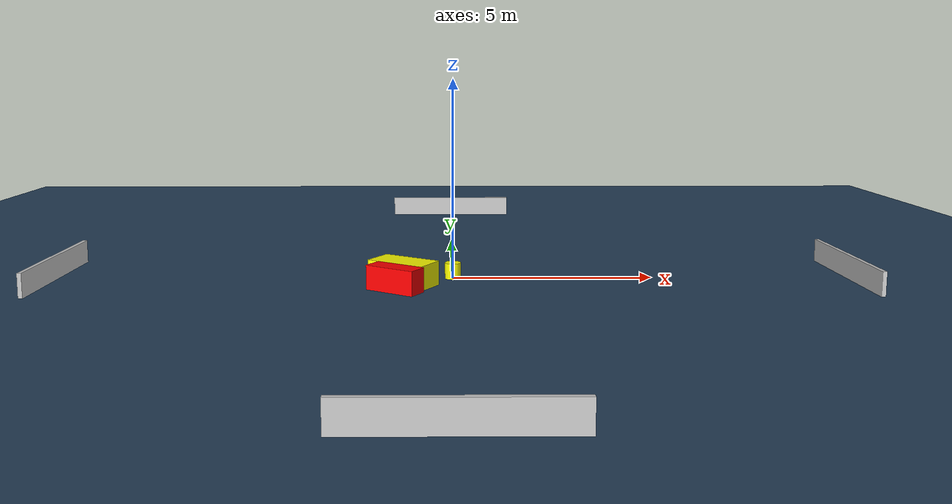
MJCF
<?xml version="1.0" ?>
<mujoco model="generated_environment">
  <option timestep="0.01" integrator="RK4" cone="elliptic"/>
  <default>
    <geom density="1"/>
  </default>
  <asset>
    <texture builtin="gradient" height="3072" name="skybox" rgb1="0.3 0.5 0.7" rgb2="0 0 0" type="skybox" width="512"/>
    <texture builtin="checker" height="300" name="groundplane" rgb1="0.2 0.3 0.4" rgb2="0.1 0.2 0.3" type="2d" width="300"/>
    <material name="groundplane" reflectance="0.2" texrepeat="5 5" texture="groundplane"/>
  </asset>
  <worldbody>
    <light dir="0 0 -1" directional="true" pos="0 0 1.5"/>
    <geom condim="3" friction="0.5 0.005 0.001" material="groundplane" name="floor" pos="0 0 0" size="0 0 0.05" type="plane"/>
    <body name="walls">
      <geom name="wall_1" condim="4" pos="-10.0 0.0 0.3" rgba="0.800000011920929 0.800000011920929 0.800000011920929 1.0" size="0.05 2.0 0.3" type="box"/>
      <geom name="wall_2" condim="4" pos="10.0 0.0 0.3" rgba="0.800000011920929 0.800000011920929 0.800000011920929 1.0" size="0.05 2.0 0.3" type="box"/>
      <geom name="wall_3" condim="4" pos="0.0 -10.0 0.3" rgba="0.800000011920929 0.800000011920929 0.800000011920929 1.0" size="2.0 0.05 0.3" type="box"/>
      <geom name="wall_4" condim="4" pos="0.0 10.0 0.3" rgba="0.800000011920929 0.800000011920929 0.800000011920929 1.0" size="2.0 0.05 0.3" type="box"/>
    </body>
    <body name="robot">
      <joint name="joint_x" type="slide" pos="0 0 0" axis="1 0 0"/>
      <joint name="joint_y" type="slide" pos="0 0 0" axis="0 1 0"/>
      <geom name="robot" type="cylinder" pos="0.0 0.0 0.2" size="0.2 0.2 0.0" mass="5.0" friction="1.0 0.005 0.0001" condim="4" rgba="1.0 1.0 0.0 1.0"/>
    </body>
    <body name="obstacle_1_movable">
      <geom name="obstacle_1_movable" condim="4" pos="-1.2177086249461848 -0.6411258267438338 0.3" euler="0 0 238.2508959200184" friction="0.0 0.005 0.001" rgba="1.0 1.0 0.0 1.0" size="0.3998263613476266 0.7805596109519037 0.3" type="box" mass="0.1"/>
      <joint type="free"/>
    </body>
    <body name="obstacle_2_static">
      <geom name="obstacle_2_static" condim="4" pos="-1.395967308711564 -1.3251916165964646 0.3" euler="0 0 327.46655714613945" friction="0.0 0.005 0.001" rgba="1.0 0.0 0.0 1.0" size="0.6632219937260206 0.2544667586411514 0.3" type="box"/>
    </body>
  </worldbody>
  <actuator>
    <motor name="actuator_x" joint="joint_x" gear="1" ctrlrange="-1 1"/>
    <motor name="actuator_y" joint="joint_y" gear="1" ctrlrange="-1 1"/>
  </actuator>
</mujoco>
